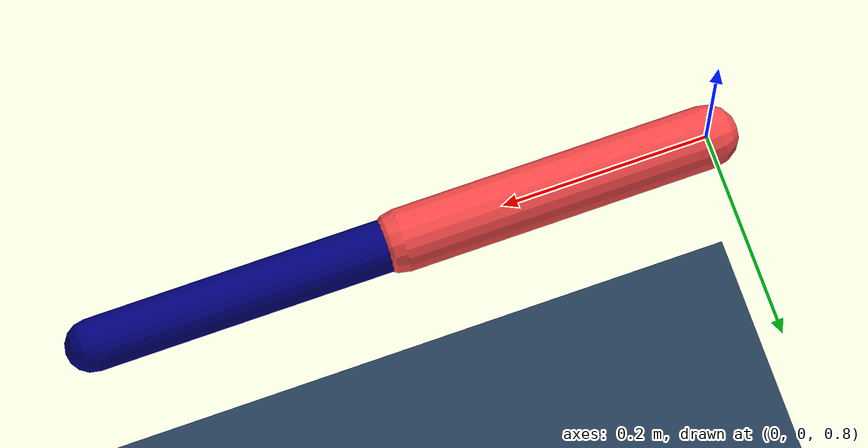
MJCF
<mujoco>
  <option timestep="0.001"/>

  <visual>
    <headlight diffuse="0.6 0.6 0.6" ambient="0.3 0.3 0.3" specular="0 0 0" />
    <rgba haze="0.15 0.25 0.35 1" />
    <global azimuth="160" elevation="-20" />
  </visual>

  <asset>
    <texture type="skybox" builtin="gradient" rgb1="0.3 0.5 0.7" rgb2="0 0 0" width="512" height="3072" />
    <texture type="2d" name="groundplane" builtin="checker" mark="edge" rgb1="0.2 0.3 0.4" rgb2="0.1 0.2 0.3" markrgb="0.8 0.8 0.8" width="300" height="300" />
    <material name="groundplane" texture="groundplane" texuniform="true" texrepeat="5 5" reflectance="0.2" />
  </asset>

  <default>
    <joint type="hinge" axis="0 1 0" limited="false" frictionloss="0.001" armature="0.005" />
    <geom type="cylinder" size="0.02" rgba="0.5 0.5 0.5 1" />
  </default>

  <worldbody>
    <light pos="0 0 3.5" dir="0 0 -1" directional="true" />
    <geom name="floor" size="0 0 0.05" pos="0 0 0" type="plane" material="groundplane" />
    <camera name="fixed" pos="0 -1 0.5" xyaxes="1 0 0 0 0 1" />

    <body name="link1" pos="0 0 0.8">
      <joint name="joint1" type="hinge" axis="0 1 0" limited="false" />
      <geom name="link1_visual" type="capsule" fromto="0 0 0 0.3 0 0" rgba="1 0.3 0.3 1" size="0.03"/>

      <body name="link2" pos="0.3 0 0">
        <joint name="joint2" type="hinge" axis="0 1 0" limited="false" />
        <geom name="link2_visual" type="capsule" fromto="0 0 0 0.3 0 0" rgba="0 0 0.5 1" size="0.025"/>
      </body>
    </body>
  </worldbody>

  <actuator>
    <motor name="motor1" joint="joint1" gear="30"/>
    <motor name="motor2" joint="joint2" gear="20"/>
  </actuator>

  <sensor>
    <framepos name="endpoint_pos" objtype="body" objname="link2"/>
  </sensor>
</mujoco>
